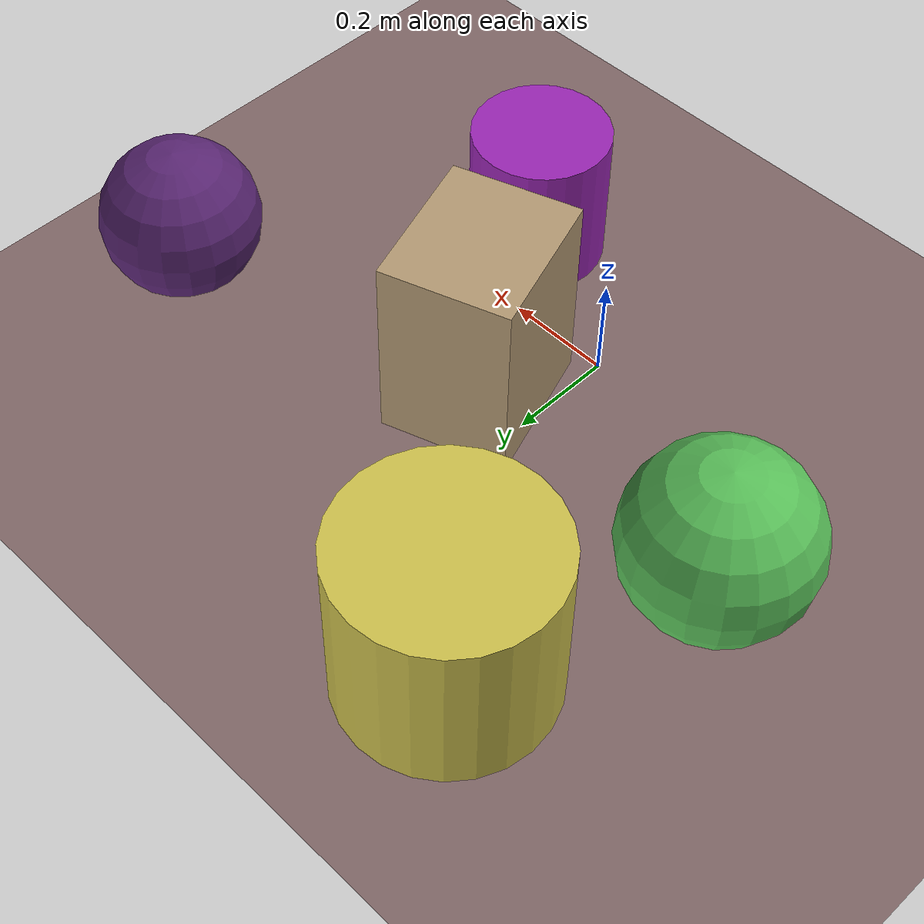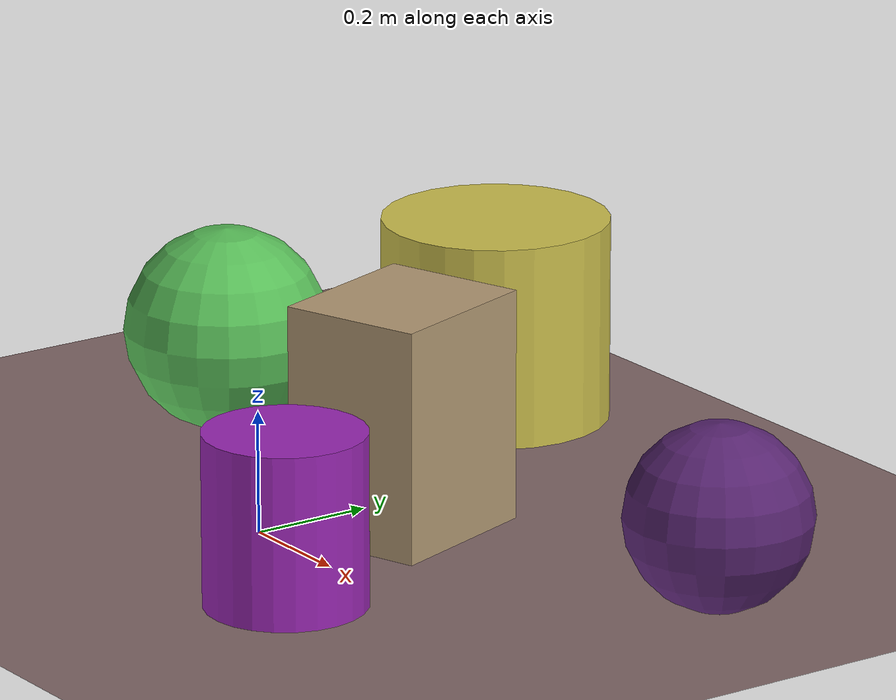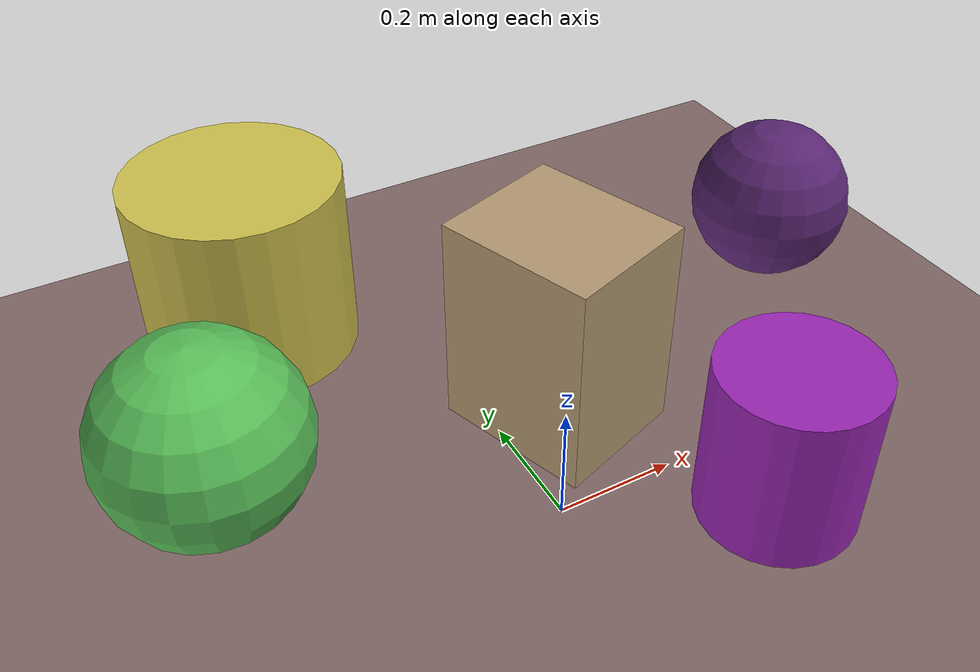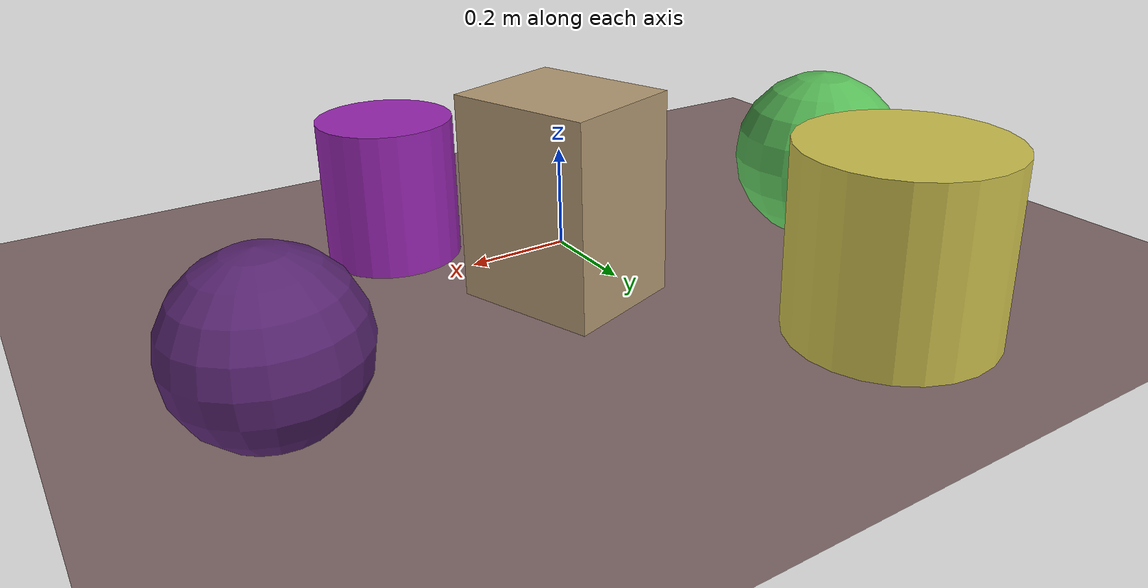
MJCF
<mujoco>
   <asset>
<texture type="skybox" builtin="gradient" rgb1="0.9 0.6 0.8" rgb2="0.9 0.9 0.5" width="256" height="256"/>
<texture name="checker_0" builtin="checker" rgb1="0.7 0.8 0.3" rgb2="0.7 0.4 0.6" width="200" height="200"/>
<texture name="gradient_1" builtin="gradient" rgb1="0.5 0.9 0.1" rgb2="0.2 0.6 0.6" width="200" height="200"/>
<texture name="gradient_2" builtin="gradient" rgb1="0.4 0.1 0.7" rgb2="0.8 0.2 0.7" width="200" height="200"/>
<texture name="gradient_3" builtin="gradient" rgb1="0.8 0.6 0.0" rgb2="0.8 0.9 0.6" width="200" height="200"/>
<texture name="gradient_4" builtin="gradient" rgb1="0.0 0.1 0.6" rgb2="0.7 0.2 0.3" width="200" height="200"/><material name="checker_0_mat" reflectance="0" texrepeat="10 10" texture="checker_0" texuniform="false" />
<material name="gradient_1_mat" reflectance="0" texture="gradient_1" texuniform="true"/>
<material name="gradient_2_mat" reflectance="0" texture="gradient_2" texuniform="true"/>
<material name="gradient_3_mat" reflectance="0" texture="gradient_3" texuniform="true"/>
<material name="gradient_4_mat" reflectance="0" texture="gradient_4" texuniform="true"/>
   </asset>

   <worldbody>
      <light diffuse=".9 .9 .9" pos="0 0 3" dir="0 0 -1"/>
     <geom type="plane" size="1 1 0.1" rgba="0.5 0.4 0.4 1"/>
<geom type="box" pos="0.11 0.2 0.19" size="0.12 0.14 0.19" material="checker_0_mat" euler="0 0 19" />
<geom type="sphere" pos="-0.47 0.25 0.17" size="0.17 0.17 0.17" material="gradient_1_mat" euler="0 0 4" />
<geom type="cylinder" pos="0.3 -0.15 0.14" size="0.13 0.14 0.14" material="gradient_2_mat" euler="0 0 3" />
<geom type="cylinder" pos="-0.27 0.65 0.17" size="0.19 0.17 0.17" material="gradient_3_mat" euler="0 0 29" />
<geom type="sphere" pos="0.7 0.38 0.15" size="0.15 0.15 0.15" material="gradient_4_mat" euler="0 0 57" /><camera euler="60 0 180" fovy="60" name="camera1" pos="-0.2 -1.5 1"></camera>   </worldbody>
</mujoco>
